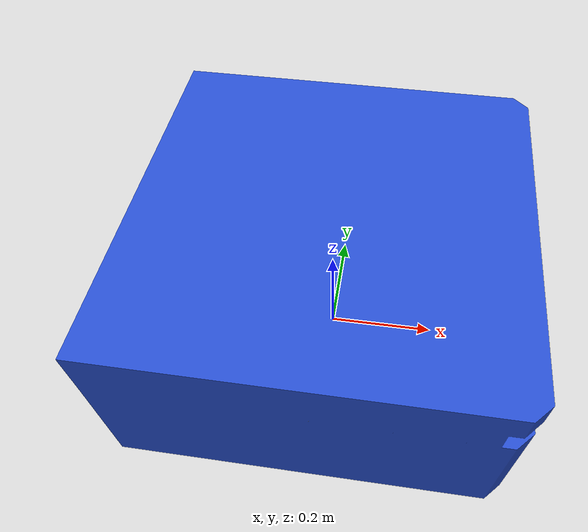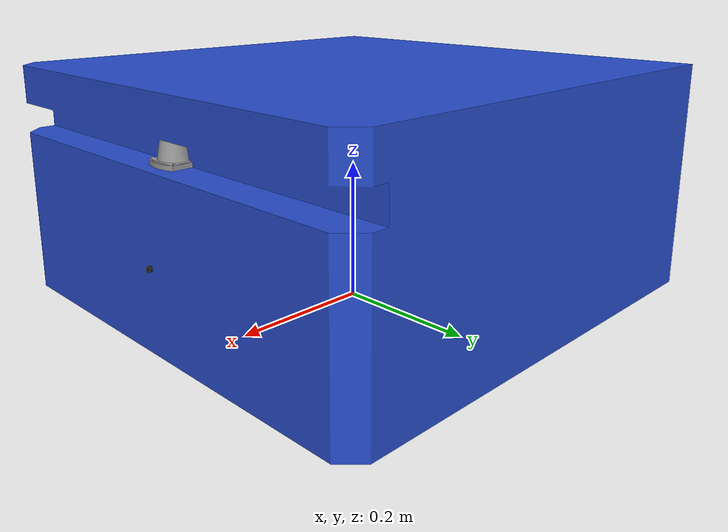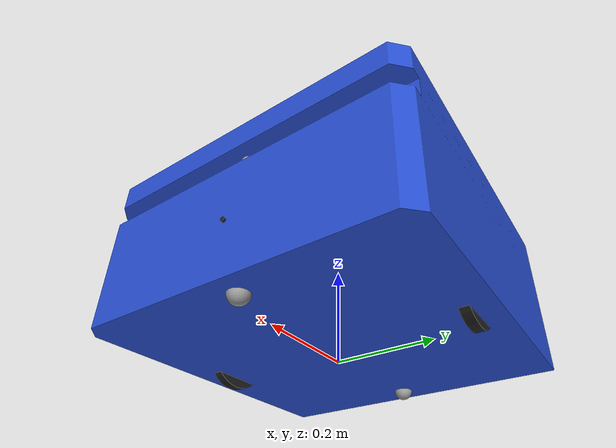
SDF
<?xml version="1.0" ?>
<sdf version="1.5">
  <model name="amr_car">
    <static>false</static>

    <link name="chassis">
      <collision name="collision">
        <geometry>
          <mesh>
            <uri>model://amr_car/meshes/chassis.stl</uri>
            <scale>0.01 0.01 0.01</scale>
          </mesh>
        </geometry>
      </collision>
      <visual name="visual">
        <geometry>
          <mesh>
            <uri>model://amr_car/meshes/chassis.stl</uri>
            <scale>0.01 0.01 0.01</scale>
          </mesh>
        </geometry>
        <material>
          <script>
            <uri>file://media/materials/scripts/gazebo.material</uri>
            <name>Gazebo/Blue</name>
          </script>
        </material>
      </visual>
      <inertial>
        <mass>100</mass>
      </inertial>
    </link>

    <!-- wheel -->
    <link name="wheel_left">
      <collision name="collision">
        <geometry>
          <mesh>
            <uri>model://amr_car/meshes/wheel_left.stl</uri>
            <scale>0.01 0.01 0.01</scale>
          </mesh>
        </geometry>
        <surface>
          <friction>
            <ode>
              <mu>0.99</mu>
              <mu2>0.9</mu2>
            </ode>
          </friction>
        </surface>
      </collision>
      <visual name="visual">
        <geometry>
          <mesh>
            <uri>model://amr_car/meshes/wheel_left.stl</uri>
            <scale>0.01 0.01 0.01</scale>
          </mesh>
        </geometry>
        <material>
          <script>
            <uri>file://media/materials/scripts/gazebo.material</uri>
            <name>Gazebo/Black</name>
          </script>
        </material>
      </visual>
    </link>
    <link name="wheel_right">
      <collision name="collision">
        <geometry>
          <mesh>
            <uri>model://amr_car/meshes/wheel_right.stl</uri>
            <scale>0.01 0.01 0.01</scale>
          </mesh>
        </geometry>
        <surface>
          <friction>
            <ode>
              <mu>0.99</mu>
              <mu2>0.9</mu2>
            </ode>
          </friction>
        </surface>
      </collision>
      <visual name="visual">
        <geometry>
          <mesh>
            <uri>model://amr_car/meshes/wheel_right.stl</uri>
            <scale>0.01 0.01 0.01</scale>
          </mesh>
        </geometry>
        <material>
          <script>
            <uri>file://media/materials/scripts/gazebo.material</uri>
            <name>Gazebo/Black</name>
          </script>
        </material>
      </visual>
    </link>
    <joint type="revolute" name="wheel_left_hinge">
      <pose>0 0.275 0.075 0 0 0</pose>
      <child>wheel_left</child>
      <parent>chassis</parent>
      <axis>
        <xyz>0 1 0</xyz>
      </axis>
    </joint>
    <joint type="revolute" name="wheel_right_hinge">
      <pose>0 -0.275 0.075 0 0 0</pose>
      <child>wheel_right</child>
      <parent>chassis</parent>
      <axis>
        <xyz>0 1 0</xyz>
      </axis>
    </joint>
    <plugin name="wheel_drive_controller" filename="libgazebo_ros_diff_drive.so">
      <odometrySource>world</odometrySource>
      <publishOdomTF>true</publishOdomTF>
      <publishWheelTF>false</publishWheelTF>
      <publishTf>true</publishTf>
      <publishWheelJointState>true</publishWheelJointState>
      <legacyMode>false</legacyMode>

      <wheelAcceleration>1</wheelAcceleration>
      <wheelTorque>10</wheelTorque>
      <rosDebugLevel>na</rosDebugLevel>

      <alwaysOn>true</alwaysOn>
      <updateRate>30</updateRate>
      <leftJoint>wheel_left_hinge</leftJoint>
      <rightJoint>wheel_right_hinge</rightJoint>
      <wheelSeparation>0.55</wheelSeparation>
      <wheelDiameter>0.16</wheelDiameter>
      <torque>20</torque>
      <commandTopic>cmd_vel</commandTopic>
      <odometryTopic>odom</odometryTopic>
      <odometryFrame>odom</odometryFrame>
      <robotBaseFrame>base_footprint</robotBaseFrame>
    </plugin>

    <!-- Lidar sick_tim551.stl-->
    <link name="sick_tim551">
      <collision name="collision">
        <geometry>
          <mesh>
            <uri>model://amr_car/meshes/sick_tim551.stl</uri>
            <scale>0.01 0.01 0.01</scale>
          </mesh>
        </geometry>
      </collision>
      <visual name="visual">
        <geometry>
          <mesh>
            <uri>model://amr_car/meshes/sick_tim551.stl</uri>
            <scale>0.01 0.01 0.01</scale>
          </mesh>
        </geometry>
        <material>
          <script>
            <uri>file://media/materials/scripts/gazebo.material</uri>
            <name>Gazebo/Gray</name>
          </script>
        </material>
      </visual>
      <sensor type="ray" name="LiDAR">
        <pose>0.29 0 0.27 0 0 0</pose>
        <ray>
          <scan>
            <horizontal>
              <samples>360</samples>
              <resolution>1</resolution>
              <min_angle>-1.5707963</min_angle>
              <max_angle>1.5707963</max_angle>

            </horizontal>
          </scan>
          <range>
            <min>0.1</min>
            <max>10</max>
            <resolution>0.01</resolution>
          </range>
        </ray>
        <plugin name="laser" filename="libgazebo_ros_laser.so">
          <gaussianNoise>0.9</gaussianNoise>
          <topicName>scan</topicName>
          <frameName>laser</frameName>
          <always_on>1</always_on>
          <update_rate>30</update_rate>
        </plugin>
        <visualize>true</visualize>
      </sensor>
    </link>
    <joint type="fixed" name="laser_joint">
      <child>sick_tim551</child>
      <parent>chassis</parent>
    </joint>

    <!-- Camera -->
    <link name="camera_front">
      <visual name="visual">
        <geometry>
          <mesh>
            <uri>model://amr_car/meshes/camera_front.stl</uri>
            <scale>0.01 0.01 0.01</scale>
          </mesh>
        </geometry>
        <material>
          <script>
            <uri>file://media/materials/scripts/gazebo.material</uri>
            <name>Gazebo/Black</name>
          </script>
        </material>
      </visual>
      <sensor type="camera" name="camera_front">
        <pose>0.33 0 0.13 0 0 0</pose>
        <update_rate>30.0</update_rate>
        <camera name="camera_front">
          <horizontal_fov>1.3962634</horizontal_fov>
          <image>
            <width>800</width>
            <height>600</height>
            <format>R8G8B8</format>
          </image>
          <clip>
            <near>0.02</near>
            <far>300</far>
          </clip>
          <noise>
            <type>gaussian</type>
            <!-- Noise is sampled independently per pixel on each frame.
                That pixel's noise value is added to each of its color
                channels, which at that point lie in the range [0,1]. -->
            <mean>0.0</mean>
            <stddev>0.007</stddev>
          </noise>
        </camera>
        <plugin name="camera_controller" filename="libgazebo_ros_camera.so">
          <alwaysOn>true</alwaysOn>
          <updateRate>0.0</updateRate>
          <cameraName>camera_front</cameraName>
          <imageTopicName>image_raw</imageTopicName>
          <cameraInfoTopicName>camera_front_info</cameraInfoTopicName>
          <frameName>camera_front</frameName>
          <hackBaseline>0.07</hackBaseline>
          <distortionK1>0.0</distortionK1>
          <distortionK2>0.0</distortionK2>
          <distortionK3>0.0</distortionK3>
          <distortionT1>0.0</distortionT1>
          <distortionT2>0.0</distortionT2>
        </plugin>
      </sensor>
    </link>
    <joint type="fixed" name="front_cam_joint">
      <child>camera_front</child>
      <parent>chassis</parent>
    </joint>

    <link name="camera_back">
      <collision name="collision">
        <geometry>
          <mesh>
            <uri>model://amr_car/meshes/camera_back.stl</uri>
            <scale>0.01 0.01 0.01</scale>
          </mesh>
        </geometry>
      </collision>
      <visual name="visual">
        <geometry>
          <mesh>
            <uri>model://amr_car/meshes/camera_back.stl</uri>
            <scale>0.01 0.01 0.01</scale>
          </mesh>
        </geometry>
        <material>
          <script>
            <uri>file://media/materials/scripts/gazebo.material</uri>
            <name>Gazebo/Black</name>
          </script>
        </material>
      </visual>
      <sensor type="camera" name="camera_back">
        <pose>-0.33 0 0.13 0 0 3.1416</pose>
        <update_rate>30.0</update_rate>
        <camera name="camera_back">
          <horizontal_fov>1.3962634</horizontal_fov>
          <image>
            <width>800</width>
            <height>600</height>
            <format>R8G8B8</format>
          </image>
          <clip>
            <near>0.02</near>
            <far>300</far>
          </clip>
          <noise>
            <type>gaussian</type>
            <!-- Noise is sampled independently per pixel on each frame.
                That pixel's noise value is added to each of its color
                channels, which at that point lie in the range [0,1]. -->
            <mean>0.0</mean>
            <stddev>0.007</stddev>
          </noise>
        </camera>
        <plugin name="camera_controller" filename="libgazebo_ros_camera.so">
          <alwaysOn>true</alwaysOn>
          <updateRate>0.0</updateRate>
          <cameraName>camera_back</cameraName>
          <imageTopicName>image_raw</imageTopicName>
          <cameraInfoTopicName>camera_back_info</cameraInfoTopicName>
          <frameName>camera_back</frameName>
          <hackBaseline>0.07</hackBaseline>
          <distortionK1>0.0</distortionK1>
          <distortionK2>0.0</distortionK2>
          <distortionK3>0.0</distortionK3>
          <distortionT1>0.0</distortionT1>
          <distortionT2>0.0</distortionT2>
        </plugin>
      </sensor>
    </link>
    <joint type="fixed" name="camera_back_joint">
      <child>camera_back</child>
      <parent>chassis</parent>
    </joint>

    <!-- caster -->
    <link name="caster_front">
      <pose>0 0 0.0001 0 0 0 </pose>
      <collision name="collision">
        <geometry>
          <mesh>
            <uri>model://amr_car/meshes/caster_front.stl</uri>
            <scale>0.01 0.01 0.01</scale>
          </mesh>
        </geometry>
        <surface>
          <friction>
            <ode>
              <mu>0.1</mu>
              <mu2>0.1</mu2>
            </ode>
          </friction>
        </surface>
      </collision>
      <visual name="visual">
        <geometry>
          <mesh>
            <uri>model://amr_car/meshes/caster_front.stl</uri>
            <scale>0.01 0.01 0.01</scale>
          </mesh>
        </geometry>
        <material>
          <script>
            <uri>file://media/materials/scripts/gazebo.material</uri>
            <name>Gazebo/Gray</name>
          </script>
        </material>
      </visual>
    </link>
    <link name="caster_back">
      <pose>0 0 0.0001 0 0 0 </pose>
      <collision name="collision">
        <geometry>
          <mesh>
            <uri>model://amr_car/meshes/caster_back.stl</uri>
            <scale>0.01 0.01 0.01</scale>
          </mesh>
        </geometry>
        <surface>
          <friction>
            <ode>
              <mu>0.1</mu>
              <mu2>0.1</mu2>
            </ode>
          </friction>
        </surface>
      </collision>
      <visual name="visual">
        <geometry>
          <mesh>
            <uri>model://amr_car/meshes/caster_back.stl</uri>
            <scale>0.01 0.01 0.01</scale>
          </mesh>
        </geometry>
        <material>
          <script>
            <uri>file://media/materials/scripts/gazebo.material</uri>
            <name>Gazebo/Gray</name>
          </script>
        </material>
      </visual>
    </link>
    <joint type="fixed" name="caster_front_joint">
      <parent>chassis</parent>
      <child>caster_front</child>
    </joint>

    <joint type="fixed" name="caster_back_joint">
      <parent>chassis</parent>
      <child>caster_back</child>
    </joint>
  </model>
</sdf>
